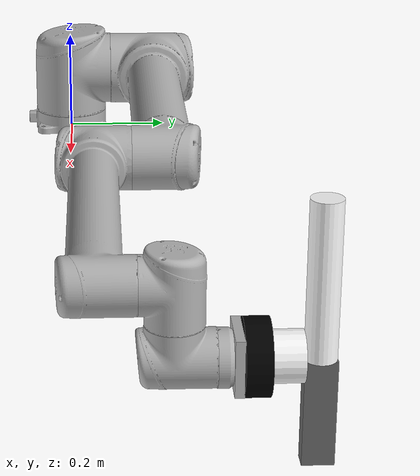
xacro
<?xml version="1.0"?>
<robot xmlns:xacro="http://ros.org/wiki/xacro"
       name="ur10" >

  <!-- common stuff -->

  <!-- ur10 -->
  <xacro:include filename="$(find ur_description)/urdf/ur10.urdf.xacro" />

  <!-- arm -->
  <xacro:ur10_robot prefix="" joint_limited="true"
    shoulder_pan_lower_limit="${0}" shoulder_pan_upper_limit="${pi/2}"
    shoulder_lift_lower_limit="${-pi}" shoulder_lift_upper_limit="${0}"
    elbow_joint_lower_limit="${0}" elbow_joint_upper_limit="${pi}"
    wrist_1_lower_limit="${-pi}" wrist_1_upper_limit="${0}"
    wrist_2_lower_limit="${-pi}" wrist_2_upper_limit="${pi/4}"
    wrist_3_lower_limit="${-pi}" wrist_3_upper_limit="${pi}"
/>

  <link name="world" />

  <joint name="world_joint" type="fixed">
    <parent link="world" />
    <child link = "base_link" />
    <origin xyz="0.0 0.0 0.0" rpy="0.0 0.0 0.0" />
  </joint>

</robot>

<!-- arm_elbow_lower_limit="${-pi}" arm_elbow_upper_limit="${pi}"
arm_forearm_lower_limit="${-pi}" arm_forearm_upper_limit="${pi}"
arm_wrist_lower_limit="${-pi}" arm_wrist_upper_limit="${pi}" -->

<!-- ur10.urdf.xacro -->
<robot xmlns:xacro="http://ros.org/wiki/xacro">

<!--
  Author: Kelsey Hawkins
  Contributers: Jimmy Da Silva, Ajit Krisshna N L, Muhammad Asif Rana
-->

  <xacro:include filename="$(find ur_description)/urdf/ur.transmission.xacro" />
  <xacro:include filename="$(find ur_description)/urdf/ur.gazebo.xacro" />

  <xacro:macro name="cylinder_inertial" params="radius length mass *origin">
    <inertial>
      <mass value="${mass}" />
      <xacro:insert_block name="origin" />
      <inertia ixx="${0.0833333 * mass * (3 * radius * radius + length * length)}" ixy="0.0" ixz="0.0"
        iyy="${0.0833333 * mass * (3 * radius * radius + length * length)}" iyz="0.0"
        izz="${0.5 * mass * radius * radius}" />
    </inertial>
  </xacro:macro>

  <xacro:macro name="ur10_robot" params="prefix joint_limited
		 shoulder_pan_lower_limit:=${-pi}    shoulder_pan_upper_limit:=${pi}
		 shoulder_lift_lower_limit:=${-pi}    shoulder_lift_upper_limit:=${pi}
		 elbow_joint_lower_limit:=${-pi}    elbow_joint_upper_limit:=${pi}
		 wrist_1_lower_limit:=${-pi}    wrist_1_upper_limit:=${pi}
		 wrist_2_lower_limit:=${-pi}    wrist_2_upper_limit:=${pi}
		 wrist_3_lower_limit:=${-pi}    wrist_3_upper_limit:=${pi}
     wrist_3_lower_limit:=${-pi}    wrist_3_upper_limit:=${pi}
     ">

      <!--    hand_lower_limit:=${-pi}    hand_upper_limit:=${pi}-->
     <!-- arm_elbow_lower_limit:=${-pi}    arm_elbow_upper_limit:=${pi} -->

     <!-- forearm_lower_limit:=${-pi}    forearm_upper_limit:=${pi} -->

    <!-- Inertia parameters -->
    <xacro:property name="base_mass" value="4.0" />  <!-- This mass might be incorrect -->
    <xacro:property name="shoulder_mass" value="7.778" />
    <xacro:property name="upper_arm_mass" value="12.93" />
    <xacro:property name="forearm_mass" value="3.87" />
    <xacro:property name="wrist_1_mass" value="1.96" />
    <xacro:property name="wrist_2_mass" value="1.96" />
    <xacro:property name="wrist_3_mass" value="0.202" />

    <xacro:property name="shoulder_cog" value="0.00008 0.00244 -0.037" />
    <xacro:property name="upper_arm_cog" value="0.00001 0.15061 0.38757" />
    <xacro:property name="forearm_cog" value="-0.00012 0.06112 0.1984" />
    <xacro:property name="wrist_1_cog" value="-0.00021 -0.00112 0.02269" />
    <xacro:property name="wrist_2_cog" value="-0.00021 0.00112 0.002269" />
    <xacro:property name="wrist_3_cog" value="0 -0.001156 -0.00149" />

    <!-- Kinematic model -->
    <!-- Properties from urcontrol.conf -->
    <xacro:property name="d1" value="0.1273" />
    <xacro:property name="a2" value="-0.612" />
    <xacro:property name="a3" value="-0.5723" />
    <xacro:property name="d4" value="0.163941" />
    <xacro:property name="d5" value="0.1157" />
    <xacro:property name="d6" value="0.0922" />

    <!-- Arbitrary offsets for shoulder/elbow joints -->
    <xacro:property name="shoulder_offset" value="0.220941" />  <!-- measured from model -->
    <xacro:property name="elbow_offset" value="-0.1719" /> <!-- measured from model -->

    <!-- link lengths used in model -->
    <xacro:property name="shoulder_height" value="${d1}" />
    <xacro:property name="upper_arm_length" value="${-a2}" />
    <xacro:property name="forearm_length" value="${-a3}" />
    <xacro:property name="wrist_1_length" value="${d4 - elbow_offset - shoulder_offset}" />
    <xacro:property name="wrist_2_length" value="${d5}" />
    <xacro:property name="wrist_3_length" value="${d6}" />

    <link name="${prefix}base_link" >
      <visual>
        <geometry>
          <mesh filename="package://ur_description/meshes/ur10/visual/base.dae"/>
        </geometry>
        <material name="LightGrey">
          <color rgba="0.7 0.7 0.7 1.0"/>
        </material>
      </visual>
      <collision>
        <geometry>
          <mesh filename="package://ur_description/meshes/ur10/collision/base.stl"/>
        </geometry>
      </collision>
      <xacro:cylinder_inertial radius="0.075" length="0.038" mass="${base_mass}">
        <origin xyz="0.0 0.0 0.0" rpy="0 0 0" />
      </xacro:cylinder_inertial>
    </link>

    <joint name="${prefix}shoulder_pan_joint" type="revolute">
      <parent link="${prefix}base_link" />
      <child link = "${prefix}shoulder_link" />
      <origin xyz="0.0 0.0 ${shoulder_height}" rpy="0.0 0.0 0.0" />
      <axis xyz="0 0 1" />
      <xacro:unless value="${joint_limited}">
        <limit lower="${-2.0 * pi}" upper="${2.0 * pi}" effort="330.0" velocity="2.16"/>
      </xacro:unless>
      <xacro:if value="${joint_limited}">
        <limit lower="${shoulder_pan_lower_limit}" upper="${shoulder_pan_upper_limit}" effort="330.0" velocity="2.16"/>
      </xacro:if>
      <dynamics damping="0.0" friction="0.0"/>
    </joint>

    <link name="${prefix}shoulder_link">
      <visual>
        <geometry>
          <mesh filename="package://ur_description/meshes/ur10/visual/shoulder.dae"/>
        </geometry>
        <material name="LightGrey">
          <color rgba="0.7 0.7 0.7 1.0"/>
        </material>
      </visual>
      <collision>
        <geometry>
          <mesh filename="package://ur_description/meshes/ur10/collision/shoulder.stl"/>
        </geometry>
      </collision>
      <xacro:cylinder_inertial radius="0.075" length="0.178" mass="${shoulder_mass}">
        <origin xyz="0.0 0.0 0.0" rpy="0 0 0" />
      </xacro:cylinder_inertial>
    </link>

    <joint name="${prefix}shoulder_lift_joint" type="revolute">
      <parent link="${prefix}shoulder_link" />
      <child link = "${prefix}upper_arm_link" />
      <origin xyz="0.0 ${shoulder_offset} 0.0" rpy="0.0 ${pi / 2.0} 0.0" />
      <axis xyz="0 1 0" />
      <xacro:unless value="${joint_limited}">
        <limit lower="${-2.0 * pi}" upper="${2.0 * pi}" effort="330.0" velocity="2.16"/>
      </xacro:unless>
      <xacro:if value="${joint_limited}">
        <limit lower="${shoulder_lift_lower_limit}" upper="${shoulder_lift_upper_limit}" effort="330.0" velocity="2.16"/>
      </xacro:if>
      <dynamics damping="0.0" friction="0.0"/>
    </joint>

    <link name="${prefix}upper_arm_link">
      <visual>
        <geometry>
          <mesh filename="package://ur_description/meshes/ur10/visual/upperarm.dae"/>
        </geometry>
        <material name="LightGrey">
          <color rgba="0.7 0.7 0.7 1.0"/>
        </material>
      </visual>
      <collision>
        <geometry>
          <mesh filename="package://ur_description/meshes/ur10/collision/upperarm.stl"/>
        </geometry>
      </collision>
      <xacro:cylinder_inertial radius="0.075" length="${-a2}" mass="${upper_arm_mass}">
        <origin xyz="0.0 0.0 ${-a2/2.0}" rpy="0 0 0" />
      </xacro:cylinder_inertial>
    </link>

    <joint name="${prefix}elbow_joint" type="revolute">
      <parent link="${prefix}upper_arm_link" />
      <child link = "${prefix}forearm_link" />
      <origin xyz="0.0 ${elbow_offset} ${upper_arm_length}" rpy="0.0 0.0 0.0" />
      <axis xyz="0 1 0" />
      <xacro:unless value="${joint_limited}">
        <limit lower="${-pi}" upper="${pi}" effort="150.0" velocity="3.15"/>
      </xacro:unless>
      <xacro:if value="${joint_limited}">
        <limit lower="${elbow_joint_lower_limit}" upper="${elbow_joint_upper_limit}" effort="150.0" velocity="3.15"/>
      </xacro:if>
      <dynamics damping="0.0" friction="0.0"/>
    </joint>

    <link name="${prefix}forearm_link">
      <visual>
         <geometry>
          <mesh filename="package://ur_description/meshes/ur10/visual/forearm.dae"/>
        </geometry>
        <material name="LightGrey">
          <color rgba="0.7 0.7 0.7 1.0"/>
        </material>
      </visual>
      <collision>
        <geometry>
          <mesh filename="package://ur_description/meshes/ur10/collision/forearm.stl"/>
        </geometry>
      </collision>
      <xacro:cylinder_inertial radius="0.075" length="${-a3}" mass="${forearm_mass}">
        <origin xyz="0.0 0.0 ${-a3/2.0}" rpy="0 0 0" />
      </xacro:cylinder_inertial>
    </link>

    <joint name="${prefix}wrist_1_joint" type="revolute">
      <parent link="${prefix}forearm_link" />
      <child link = "${prefix}wrist_1_link" />
      <origin xyz="0.0 0.0 ${forearm_length}" rpy="0.0 ${pi / 2.0} 0.0" />
      <axis xyz="0 1 0" />
      <xacro:unless value="${joint_limited}">
        <limit lower="${-2.0 * pi}" upper="${2.0 * pi}" effort="54.0" velocity="3.2"/>
      </xacro:unless>
      <xacro:if value="${joint_limited}">
        <limit lower="${wrist_1_lower_limit}" upper="${wrist_1_upper_limit}" effort="54.0" velocity="3.2"/>
      </xacro:if>
      <dynamics damping="0.0" friction="0.0"/>
    </joint>

    <link name="${prefix}wrist_1_link">
      <visual>
        <geometry>
          <mesh filename="package://ur_description/meshes/ur10/visual/wrist1.dae"/>
        </geometry>
        <material name="LightGrey">
          <color rgba="0.7 0.7 0.7 1.0"/>
        </material>
      </visual>
      <collision>
        <geometry>
          <mesh filename="package://ur_description/meshes/ur10/collision/wrist1.stl"/>
        </geometry>
      </collision>
      <xacro:cylinder_inertial radius="0.075" length="0.12" mass="${wrist_1_mass}">
        <origin xyz="0.0 0.0 0.0" rpy="0 0 0" />
      </xacro:cylinder_inertial>
    </link>

    <joint name="${prefix}wrist_2_joint" type="revolute">
      <parent link="${prefix}wrist_1_link" />
      <child link = "${prefix}wrist_2_link" />
      <origin xyz="0.0 ${wrist_1_length} 0.0" rpy="0.0 0.0 0.0" />
      <axis xyz="0 0 1" />
      <xacro:unless value="${joint_limited}">
        <limit lower="${-2.0 * pi}" upper="${2.0 * pi}" effort="54.0" velocity="3.2"/>
      </xacro:unless>
      <xacro:if value="${joint_limited}">
        <limit lower="${wrist_2_lower_limit}" upper="${wrist_2_upper_limit}" effort="54.0" velocity="3.2"/>
      </xacro:if>
      <dynamics damping="0.0" friction="0.0"/>
    </joint>

    <link name="${prefix}wrist_2_link">
      <visual>
        <geometry>
          <mesh filename="package://ur_description/meshes/ur10/visual/wrist2.dae"/>
        </geometry>
        <material name="LightGrey">
          <color rgba="0.7 0.7 0.7 1.0"/>
        </material>
      </visual>
      <collision>
        <geometry>
          <mesh filename="package://ur_description/meshes/ur10/collision/wrist2.stl"/>
        </geometry>
      </collision>
      <xacro:cylinder_inertial radius="0.075" length="0.12" mass="${wrist_2_mass}">
        <origin xyz="0.0 0.0 0.0" rpy="0 0 0" />
      </xacro:cylinder_inertial>
    </link>

    <joint name="${prefix}wrist_3_joint" type="revolute">
      <parent link="${prefix}wrist_2_link" />
      <child link = "${prefix}wrist_3_link" />
      <origin xyz="0.0 0.0 ${wrist_2_length}" rpy="0.0 0.0 0.0" />
      <axis xyz="0 1 0" />
      <xacro:unless value="${joint_limited}">
        <limit lower="${-2.0 * pi}" upper="${2.0 * pi}" effort="54.0" velocity="3.2"/>
      </xacro:unless>
      <xacro:if value="${joint_limited}">
       <limit lower="${wrist_3_lower_limit}" upper="${wrist_3_upper_limit}" effort="54.0" velocity="3.2"/>
      </xacro:if>
      <dynamics damping="0.0" friction="0.0"/>
    </joint>

    <link name="${prefix}wrist_3_link">
      <visual>
        <geometry>
          <mesh filename="package://ur_description/meshes/ur10/visual/wrist3.dae"/>
        </geometry>
        <material name="LightGrey">
          <color rgba="0.7 0.7 0.7 1.0"/>
        </material>
      </visual>
      <collision>
        <geometry>
          <mesh filename="package://ur_description/meshes/ur10/collision/wrist3.stl"/>
        </geometry>
      </collision>
      <xacro:cylinder_inertial radius="0.075" length="0.12" mass="${wrist_3_mass}">
        <origin xyz="0.0 0.0 0.0" rpy="0 0 0" />
      </xacro:cylinder_inertial>
    </link>

    <joint name="${prefix}ee_fixed_joint" type="fixed">
      <parent link="${prefix}wrist_3_link" />
      <child link = "${prefix}ee_link" />
      <origin xyz="0.0 ${wrist_3_length} 0.0" rpy="0.0 0.0 ${pi/2.0}" />
    </joint>

    <link name="${prefix}ee_link">
      <collision>
        <geometry>
          <box size="0.01 0.01 0.01"/>
        </geometry>
        <origin rpy="0 0 0" xyz="-0.01 0 0"/>
      </collision>
    </link>

    <joint name="${prefix}ee_plate_joint" type="fixed">
      <parent link="${prefix}ee_link" />
      <child link = "${prefix}ee_metal_plate" />
      <origin xyz="0.0 0.0 0.0" rpy="0.0 0.0 0.0" />
    </joint>

    <link name="${prefix}ee_metal_plate">
      <visual>
        <geometry>
          <box size="0.09 0.09 0.015"/>
        </geometry>
        <origin rpy="0 ${pi/2.0} 0" xyz="0 0 0"/>
        <material name="LightGrey">
          <color rgba="0.7 0.7 0.7 1.0"/>
        </material>
      </visual>
      <collision>
        <geometry>
          <box size="0.085 0.085 0.01"/>
        </geometry>
        <origin rpy="0 ${pi/2.0} 0" xyz="0 0 0"/>
      </collision>
    </link>

    <joint name="${prefix}ee_sensor_joint" type="fixed">
      <parent link="${prefix}ee_metal_plate" />
      <child link = "${prefix}ee_sensor_plate" />
      <origin xyz="0.027 0.0 0.0" rpy="0.0 0.0 0.0" />
    </joint>

    <link name="${prefix}ee_sensor_plate">
      <visual>
        <geometry>
          <cylinder length="0.04" radius="0.06"/>
        </geometry>
        <origin rpy="0 ${pi/2.0} 0" xyz="0 0 0"/>
        <material name="Black">
          <color rgba="0.0 0.0 0.0 1.0"/>
        </material>
      </visual>
      <collision>
        <geometry>
          <cylinder length="0.04" radius="0.06"/>
        </geometry>
        <origin rpy="0 ${pi/2.0} 0" xyz="0 0 0"/>
      </collision>
    </link>

    <joint name="${prefix}ee_magnet_joint" type="fixed">
      <parent link="${prefix}ee_sensor_plate" />
      <child link = "${prefix}ee_magnet_cylinder" />
      <origin xyz="0.045 0.0 0.0" rpy="0.0 0.0 0.0" />
    </joint>

    <link name="${prefix}ee_magnet_cylinder">
      <visual>
        <geometry>
          <cylinder length="0.05" radius="0.04"/>
        </geometry>
        <origin rpy="0 ${pi/2.0} 0" xyz="0 0 0"/>
        <material name="White">
          <color rgba="1.0 1.0 1.0 1.0"/>
        </material>
      </visual>
      <collision>
        <geometry>
          <cylinder length="0.05" radius="0.04"/>
        </geometry>
        <origin rpy="0 ${pi/2.0} 0" xyz="0 0 0"/>
      </collision>
    </link>

    <joint name="${prefix}fake_arm_joint" type="fixed">
      <parent link="${prefix}ee_magnet_cylinder" />
      <child link = "${prefix}fake_arm_link" />
      <origin xyz="0.05 0.0 -0.12" rpy="0.0 0.0 0.0" />
    </joint>

    <link name="${prefix}fake_arm_link">
      <visual>
        <geometry>
          <cylinder length="0.25" radius="0.025"/>
        </geometry>
        <origin rpy="0 0 0" xyz="0 0 0"/>
        <material name="ArmColor">
          <color rgba="1.0 1.0 1.0 1.0"/>
        </material>
      </visual>
      <collision>
        <geometry>
          <cylinder length="0.25" radius="0.025"/>
        </geometry>
        <origin rpy="0 0 0" xyz="0 0 0"/>
      </collision>
    </link>

    <joint name="${prefix}fake_hand_joint" type="fixed">
      <parent link="${prefix}ee_magnet_cylinder" />
      <child link = "${prefix}fake_hand_link" />
      <origin xyz="0.05 0.0 0.09" rpy="0.0 0.0 0.0" />
    </joint>

    <link name="${prefix}fake_hand_link">
      <visual>
        <geometry>
          <box size="0.17 0.03 0.05"/>
        </geometry>
        <origin rpy="0 ${pi/2.0} 0" xyz="0 0 0"/>
        <material name="HandColor">
          <color rgba="0.4 0.4 0.4 1.0"/>
        </material>
      </visual>
      <collision>
        <geometry>
          <box size="0.17 0.03 0.05"/>
        </geometry>
        <origin rpy="0 ${pi/2.0} 0" xyz="0 0 0"/>
      </collision>
    </link>

<!-- #########################ARM TEST########################## -->

    <xacro:ur_arm_transmission prefix="${prefix}" />
    <xacro:ur_arm_gazebo prefix="${prefix}" />

    <!-- ROS base_link to UR 'Base' Coordinates transform -->
    <link name="${prefix}base"/>
    <joint name="${prefix}base_link-base_fixed_joint" type="fixed">
      <!-- NOTE: this rotation is only needed as long as base_link itself is
                 not corrected wrt the real robot (ie: rotated over 180
                 degrees)
      -->
      <origin xyz="0 0 0" rpy="0 0 ${-pi}"/>
      <parent link="${prefix}base_link"/>
      <child link="${prefix}base"/>
    </joint>

    <!-- Frame coincident with all-zeros TCP on UR controller -->
    <link name="${prefix}tool0"/>
    <joint name="${prefix}wrist_3_link-tool0_fixed_joint" type="fixed">
      <origin xyz="0 ${wrist_3_length} 0" rpy="${pi/-2.0} 0 0"/>
      <parent link="${prefix}wrist_3_link"/>
      <child link="${prefix}tool0"/>
    </joint>

  </xacro:macro>
</robot>
